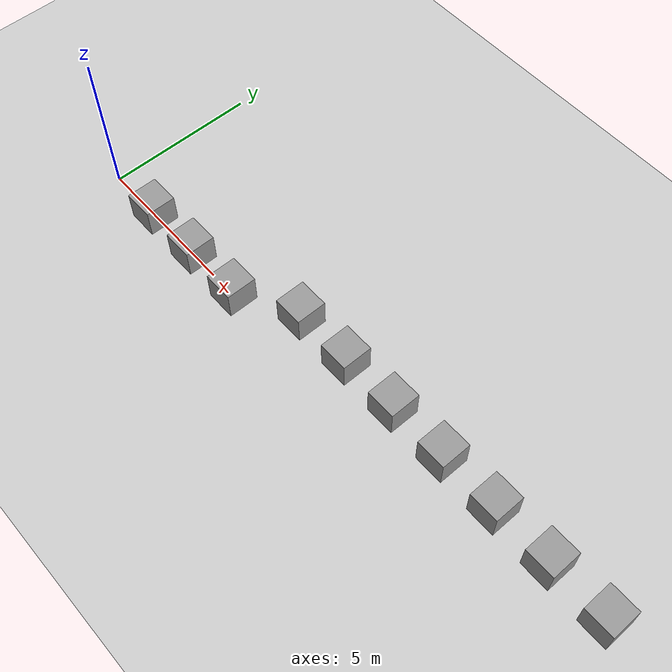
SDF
<sdf version="1.6">
 <world name="default">
  <light name="sun" type="directional">
   <pose>0 0 10 0 -0 0</pose>
   <diffuse>0.8 0.8 0.8 1</diffuse>
   <specular>0.2 0.2 0.2 1</specular>
   <attenuation>
    <range>1000</range>
    <constant>0.9</constant>
    <linear>0.01</linear>
    <quadratic>0.001</quadratic>
   </attenuation>
   <direction>-0.5 0.1 -0.9</direction>
  </light>
  <model name="ground_plane">
   <static>1</static>
   <link name="link">
    <collision name="collision">
     <geometry><plane><normal>0 0 1</normal><size>100 100</size></plane></geometry>
     <surface><friction><ode><mu>100</mu><mu2>50</mu2></ode></friction></surface>
    </collision>
    <visual name="visual">
     <cast_shadows>0</cast_shadows>
     <geometry><plane><normal>0 0 1</normal><size>100 100</size></plane></geometry>
     <material>
      <script><uri>file://media/materials/scripts/gazebo.material</uri><name>Gazebo/Grey</name></script>
     </material>
    </visual>
   </link>
  </model>
  <gravity>0 0 -9.8</gravity>
  <magnetic_field>6e-06 2.3e-05 -4.2e-05</magnetic_field>
  <atmosphere type="adiabatic"/>
  <physics name="default_physics" default="0" type="ode">
   <min_step_size>0.001</min_step_size>
   <max_step_size>0.001</max_step_size>
   <real_time_factor>1</real_time_factor>
   <real_time_update_rate>1000</real_time_update_rate>
  </physics>
  <scene><ambient>0.4 0.4 0.4 1</ambient><background>0.7 0.7 0.7 1</background><shadows>1</shadows></scene>
  <spherical_coordinates>
   <surface_model>EARTH_WGS84</surface_model>
   <latitude_deg>0</latitude_deg>
   <longitude_deg>0</longitude_deg>
   <elevation>0</elevation>
   <heading_deg>0</heading_deg>
  </spherical_coordinates>
  <model name="unit_box_0">
   <pose>2 0 0.5 0 -0 0</pose>
   <link name="link">
    <inertial>
     <mass>1</mass>
     <inertia>
      <ixx>0.166667</ixx>
      <ixy>0</ixy>
      <ixz>0</ixz>
      <iyy>0.166667</iyy>
      <iyz>0</iyz>
      <izz>0.166667</izz>
     </inertia>
    </inertial>
    <collision name="collision"><geometry><box><size>1 1 1</size></box></geometry></collision>
    <visual name="visual">
     <geometry><box><size>1 1 1</size></box></geometry>
     <material>
      <script><name>Gazebo/Grey</name><uri>file://media/materials/scripts/gazebo.material</uri></script>
     </material>
    </visual>
   </link>
  </model>
  <model name="unit_box_1">
   <pose>4 0 0.5 0 -0 0</pose>
   <link name="link">
    <inertial>
     <mass>1</mass>
     <inertia>
      <ixx>0.166667</ixx>
      <ixy>0</ixy>
      <ixz>0</ixz>
      <iyy>0.166667</iyy>
      <iyz>0</iyz>
      <izz>0.166667</izz>
     </inertia>
    </inertial>
    <collision name="collision"><geometry><box><size>1 1 1</size></box></geometry></collision>
    <visual name="visual">
     <geometry><box><size>1 1 1</size></box></geometry>
     <material>
      <script><name>Gazebo/Grey</name><uri>file://media/materials/scripts/gazebo.material</uri></script>
     </material>
    </visual>
   </link>
  </model>
  <model name="unit_box_2">
   <pose>6 0 0.5 0 -0 0</pose>
   <link name="link">
    <inertial>
     <mass>1</mass>
     <inertia>
      <ixx>0.166667</ixx>
      <ixy>0</ixy>
      <ixz>0</ixz>
      <iyy>0.166667</iyy>
      <iyz>0</iyz>
      <izz>0.166667</izz>
     </inertia>
    </inertial>
    <collision name="collision"><geometry><box><size>1 1 1</size></box></geometry></collision>
    <visual name="visual">
     <geometry><box><size>1 1 1</size></box></geometry>
     <material>
      <script><name>Gazebo/Grey</name><uri>file://media/materials/scripts/gazebo.material</uri></script>
     </material>
    </visual>
   </link>
  </model>
  <model name="unit_box_3">
   <pose>8 1 0.5 0 -0 0</pose>
   <link name="link">
    <inertial>
     <mass>1</mass>
     <inertia>
      <ixx>0.166667</ixx>
      <ixy>0</ixy>
      <ixz>0</ixz>
      <iyy>0.166667</iyy>
      <iyz>0</iyz>
      <izz>0.166667</izz>
     </inertia>
    </inertial>
    <collision name="collision"><geometry><box><size>1 1 1</size></box></geometry></collision>
    <visual name="visual">
     <geometry><box><size>1 1 1</size></box></geometry>
     <material>
      <script><name>Gazebo/Grey</name><uri>file://media/materials/scripts/gazebo.material</uri></script>
     </material>
    </visual>
   </link>
  </model>
  <model name="unit_box_4">
   <pose>10 1 0.5 0 -0 0</pose>
   <link name="link">
    <inertial>
     <mass>1</mass>
     <inertia>
      <ixx>0.166667</ixx>
      <ixy>0</ixy>
      <ixz>0</ixz>
      <iyy>0.166667</iyy>
      <iyz>0</iyz>
      <izz>0.166667</izz>
     </inertia>
    </inertial>
    <collision name="collision"><geometry><box><size>1 1 1</size></box></geometry></collision>
    <visual name="visual">
     <geometry><box><size>1 1 1</size></box></geometry>
     <material>
      <script><name>Gazebo/Grey</name><uri>file://media/materials/scripts/gazebo.material</uri></script>
     </material>
    </visual>
   </link>
  </model>
  <model name="unit_box_5">
   <pose>12 1 0.5 0 -0 0</pose>
   <link name="link">
    <inertial>
     <mass>1</mass>
     <inertia>
      <ixx>0.166667</ixx>
      <ixy>0</ixy>
      <ixz>0</ixz>
      <iyy>0.166667</iyy>
      <iyz>0</iyz>
      <izz>0.166667</izz>
     </inertia>
    </inertial>
    <collision name="collision"><geometry><box><size>1 1 1</size></box></geometry></collision>
    <visual name="visual">
     <geometry><box><size>1 1 1</size></box></geometry>
     <material>
      <script><name>Gazebo/Grey</name><uri>file://media/materials/scripts/gazebo.material</uri></script>
     </material>
    </visual>
   </link>
  </model>
  <model name="unit_box_6">
   <pose>14 1 0.5 0 -0 0</pose>
   <link name="link">
    <inertial>
     <mass>1</mass>
     <inertia>
      <ixx>0.166667</ixx>
      <ixy>0</ixy>
      <ixz>0</ixz>
      <iyy>0.166667</iyy>
      <iyz>0</iyz>
      <izz>0.166667</izz>
     </inertia>
    </inertial>
    <collision name="collision"><geometry><box><size>1 1 1</size></box></geometry></collision>
    <visual name="visual">
     <geometry><box><size>1 1 1</size></box></geometry>
     <material>
      <script><name>Gazebo/Grey</name><uri>file://media/materials/scripts/gazebo.material</uri></script>
     </material>
    </visual>
   </link>
  </model>
  <model name="unit_box_7">
   <pose>16 1 0.5 0 -0 0</pose>
   <link name="link">
    <inertial>
     <mass>1</mass>
     <inertia>
      <ixx>0.166667</ixx>
      <ixy>0</ixy>
      <ixz>0</ixz>
      <iyy>0.166667</iyy>
      <iyz>0</iyz>
      <izz>0.166667</izz>
     </inertia>
    </inertial>
    <collision name="collision"><geometry><box><size>1 1 1</size></box></geometry></collision>
    <visual name="visual">
     <geometry><box><size>1 1 1</size></box></geometry>
     <material>
      <script><name>Gazebo/Grey</name><uri>file://media/materials/scripts/gazebo.material</uri></script>
     </material>
    </visual>
   </link>
  </model>
  <model name="unit_box_8">
   <pose>18 1 0.5 0 -0 0</pose>
   <link name="link">
    <inertial>
     <mass>1</mass>
     <inertia>
      <ixx>0.166667</ixx>
      <ixy>0</ixy>
      <ixz>0</ixz>
      <iyy>0.166667</iyy>
      <iyz>0</iyz>
      <izz>0.166667</izz>
     </inertia>
    </inertial>
    <collision name="collision"><geometry><box><size>1 1 1</size></box></geometry></collision>
    <visual name="visual">
     <geometry><box><size>1 1 1</size></box></geometry>
     <material>
      <script><name>Gazebo/Grey</name><uri>file://media/materials/scripts/gazebo.material</uri></script>
     </material>
    </visual>
   </link>
  </model>
  <model name="unit_box_9">
   <pose>20 1 0.5 0 -0 0</pose>
   <link name="link">
    <inertial>
     <mass>1</mass>
     <inertia>
      <ixx>0.166667</ixx>
      <ixy>0</ixy>
      <ixz>0</ixz>
      <iyy>0.166667</iyy>
      <iyz>0</iyz>
      <izz>0.166667</izz>
     </inertia>
    </inertial>
    <collision name="collision"><geometry><box><size>1 1 1</size></box></geometry></collision>
    <visual name="visual">
     <geometry><box><size>1 1 1</size></box></geometry>
     <material>
      <script><name>Gazebo/Grey</name><uri>file://media/materials/scripts/gazebo.material</uri></script>
     </material>
    </visual>
   </link>
  </model>
 </world>
</sdf>
